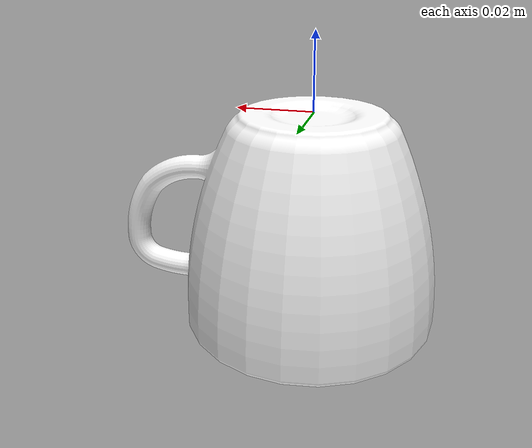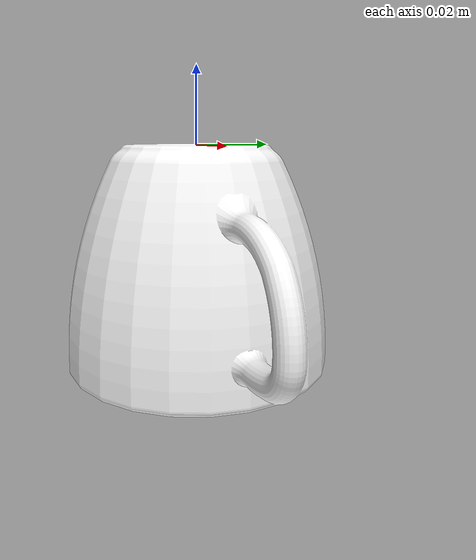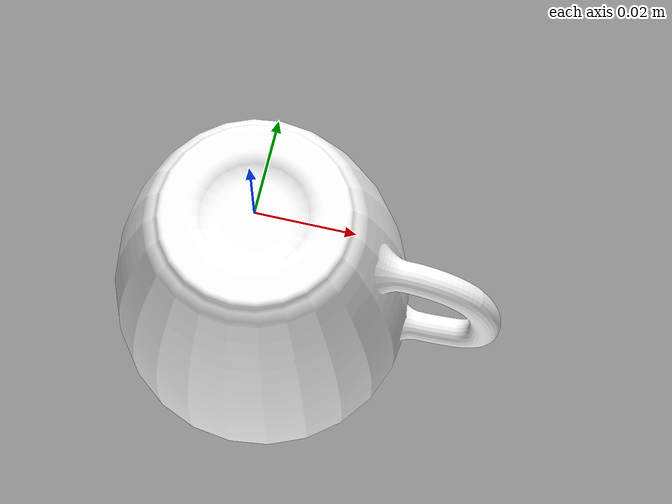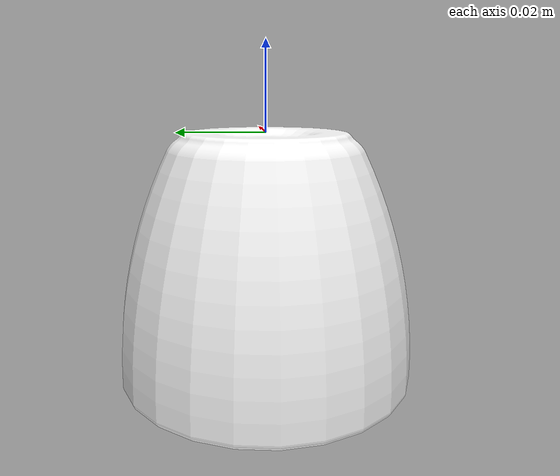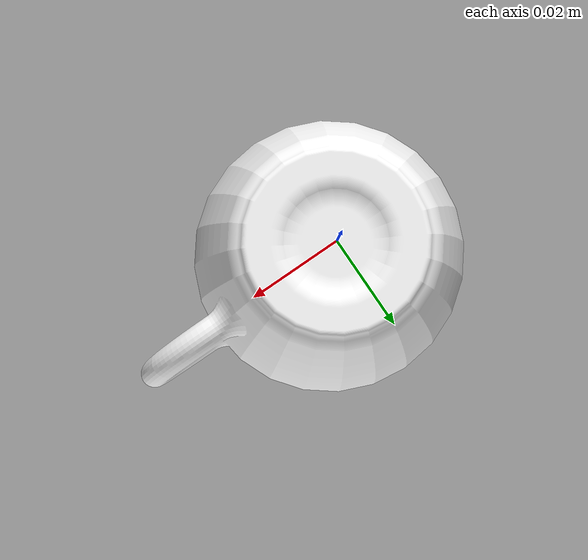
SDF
<?xml version="1.0" ?>
<sdf version="1.4">
  <model name="cup">
    <link name="cup_link">
      <inertial>
        <pose>-0.00 0.0 -0.00 0 0 0</pose>
        <mass>1</mass>
        <inertia>
          <ixx>0.001667</ixx>
	  <ixy>0.0</ixy>
	  <ixz>0.0</ixz>
	  <iyy>0.001667</iyy>
	  <iyz>0.0</iyz>
	  <izz>0.001667</izz>
	</inertia>
      </inertial>

      <visual name="cap_visual">
        <pose>0 0 0 3.14159265 0 0 </pose>
        <material>
          <lighting>1</lighting>
	  <ambient>1 1 1 1</ambient>
	  <emissive>0.3 0.3 0.3 1</emissive>
        </material>
        <geometry>
          <mesh>
            <uri>model://cup/meshes/cup.dae</uri>
	    <scale>0.001 0.001 0.001</scale>
          </mesh>
        </geometry>
      </visual>

      <collision name="cup_collision">
        <pose>0.0 0.0 0.0 3.14159265 0.0 0.0</pose>
        <geometry>
          <mesh>
            <uri>model://cup/meshes/cup.dae</uri>
	    <scale>0.001 0.001 0.001</scale>
          </mesh>
        </geometry>
        <max_contacts>10</max_contacts>
        <surface>
          <contact>
            <ode/>
          </contact>
          <bounce/>
          <friction>
            <torsional>
              <ode/>
            </torsional>
            <ode>
              <mu>0.8</mu>
              <mu2>0.8</mu2>
            </ode>
          </friction>
        </surface>
      </collision>
      <self_collide>0</self_collide>
      <kinematic>0</kinematic>
    </link>
  </model>
</sdf>
